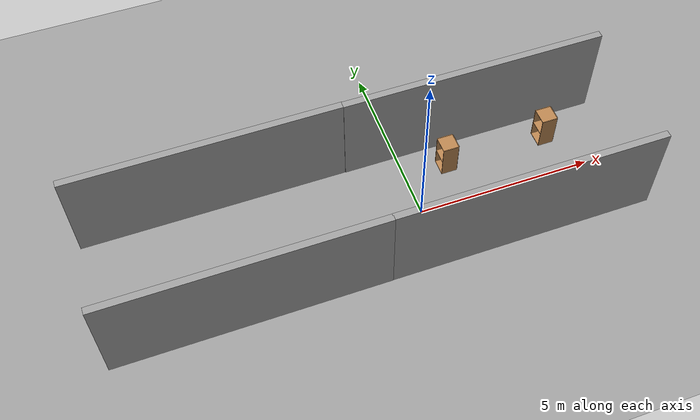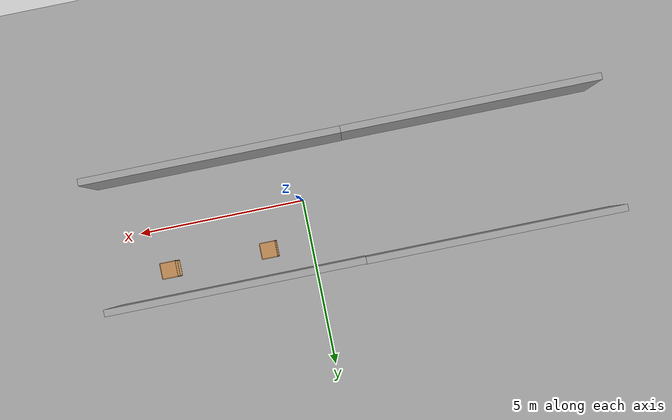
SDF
<sdf version="1.6">
 <world name="default">
  <light name="sun" type="directional">
   <pose>0 0 10 0 -0 0</pose>
   <diffuse>0.8 0.8 0.8 1</diffuse>
   <specular>0.2 0.2 0.2 1</specular>
   <attenuation>
    <range>1000</range>
    <constant>0.9</constant>
    <linear>0.01</linear>
    <quadratic>0.001</quadratic>
   </attenuation>
   <direction>0.5 0.1 -0.9</direction>
  </light>
  <scene><ambient>0.4 0.4 0.4 1</ambient><background>0.7 0.7 0.7 1</background><shadows>1</shadows></scene>
  <physics name="default_physics" default="0" type="ode">
   <max_step_size>0.01</max_step_size>
   <real_time_factor>1</real_time_factor>
   <real_time_update_rate>100</real_time_update_rate>
  </physics>
  <model name="ground_plane_0">
   <static>1</static>
   <link name="link">
    <collision name="collision">
     <geometry><plane><normal>0 0 1</normal><size>100 100</size></plane></geometry>
     <surface><friction><ode><mu>100</mu><mu2>50</mu2></ode></friction></surface>
    </collision>
    <visual name="visual">
     <cast_shadows>0</cast_shadows>
     <geometry><plane><normal>0 0 1</normal><size>100 100</size></plane></geometry>
     <material>
      <script><uri>file://media/materials/scripts/gazebo.material</uri><name>Gazebo/Grey</name></script>
     </material>
    </visual>
    <velocity_decay><linear>0</linear><angular>0</angular></velocity_decay>
   </link>
   <pose>0.497681 0 0 0 -0 0</pose>
  </model>
  <gravity>0 0 -9.8</gravity>
  <magnetic_field>6e-06 2.3e-05 -4.2e-05</magnetic_field>
  <atmosphere type="adiabatic"/>
  <spherical_coordinates>
   <surface_model>EARTH_WGS84</surface_model>
   <latitude_deg>0</latitude_deg>
   <longitude_deg>0</longitude_deg>
   <elevation>0</elevation>
   <heading_deg>0</heading_deg>
  </spherical_coordinates>
  <model name="cabinet_0">
   <static>1</static>
   <link name="cabinet_bottom_plate">
    <inertial>
     <pose>0 0 -1 0 -0 0</pose>
     <inertia><ixx>2.05</ixx><ixy>0</ixy><ixz>0</ixz><iyy>2.05</iyy><iyz>0</iyz><izz>2.05</izz></inertia>
     <mass>25</mass>
    </inertial>
    <collision name="cabinet_bottom_plate_geom">
     <pose>0 0 0.01 0 -0 0</pose>
     <geometry><box><size>0.45 0.45 0.02</size></box></geometry>
    </collision>
    <visual name="cabinet_bottom_plate_geom_visual">
     <pose>0 0 0.01 0 -0 0</pose>
     <geometry><box><size>0.45 0.45 0.02</size></box></geometry>
     <material>
      <script><uri>file://media/materials/scripts/gazebo.material</uri><name>Gazebo/Wood</name></script>
     </material>
    </visual>
    <collision name="cabinet_bottom_plate_geom_cabinet_back_plate">
     <pose>0.235 0 0.51 0 -0 0</pose>
     <geometry><box><size>0.02 0.45 1.02</size></box></geometry>
    </collision>
    <visual name="cabinet_bottom_plate_geom_cabinet_back_plate_visual">
     <pose>0.235 0 0.51 0 -0 0</pose>
     <geometry><box><size>0.02 0.45 1.02</size></box></geometry>
     <material>
      <script><uri>file://media/materials/scripts/gazebo.material</uri><name>Gazebo/Wood</name></script>
     </material>
    </visual>
    <collision name="cabinet_bottom_plate_geom_cabinet_left_plate">
     <pose>0 0.235 0.51 0 -0 0</pose>
     <geometry><box><size>0.45 0.02 1.02</size></box></geometry>
    </collision>
    <visual name="cabinet_bottom_plate_geom_cabinet_left_plate_visual">
     <pose>0 0.235 0.51 0 -0 0</pose>
     <geometry><box><size>0.45 0.02 1.02</size></box></geometry>
     <material>
      <script><uri>file://media/materials/scripts/gazebo.material</uri><name>Gazebo/Wood</name></script>
     </material>
    </visual>
    <collision name="cabinet_bottom_plate_geom_cabinet_middle_plate">
     <pose>0 0 0.51 0 -0 0</pose>
     <geometry><box><size>0.45 0.45 0.02</size></box></geometry>
    </collision>
    <visual name="cabinet_bottom_plate_geom_cabinet_middle_plate_visual">
     <pose>0 0 0.51 0 -0 0</pose>
     <geometry><box><size>0.45 0.45 0.02</size></box></geometry>
     <material>
      <script><uri>file://media/materials/scripts/gazebo.material</uri><name>Gazebo/Wood</name></script>
     </material>
    </visual>
    <collision name="cabinet_bottom_plate_geom_cabinet_right_plate">
     <pose>0 -0.235 0.51 0 -0 0</pose>
     <geometry><box><size>0.45 0.02 1.02</size></box></geometry>
    </collision>
    <visual name="cabinet_bottom_plate_geom_cabinet_right_plate_visual">
     <pose>0 -0.235 0.51 0 -0 0</pose>
     <geometry><box><size>0.45 0.02 1.02</size></box></geometry>
     <material>
      <script><uri>file://media/materials/scripts/gazebo.material</uri><name>Gazebo/Wood</name></script>
     </material>
    </visual>
    <collision name="cabinet_bottom_plate_geom_cabinet_top_plate">
     <pose>0 0 1.01 0 -0 0</pose>
     <geometry><box><size>0.45 0.45 0.02</size></box></geometry>
    </collision>
    <visual name="cabinet_bottom_plate_geom_cabinet_top_plate_visual">
     <pose>0 0 1.01 0 -0 0</pose>
     <geometry><box><size>0.45 0.45 0.02</size></box></geometry>
     <material>
      <script><uri>file://media/materials/scripts/gazebo.material</uri><name>Gazebo/Wood</name></script>
     </material>
    </visual>
   </link>
   <pose>4.23049 1.2407 0 0 -0 0</pose>
  </model>
  <model name="cabinet_1">
   <static>1</static>
   <link name="cabinet_bottom_plate">
    <inertial>
     <pose>0 0 -1 0 -0 0</pose>
     <inertia><ixx>2.05</ixx><ixy>0</ixy><ixz>0</ixz><iyy>2.05</iyy><iyz>0</iyz><izz>2.05</izz></inertia>
     <mass>25</mass>
    </inertial>
    <collision name="cabinet_bottom_plate_geom">
     <pose>0 0 0.01 0 -0 0</pose>
     <geometry><box><size>0.45 0.45 0.02</size></box></geometry>
    </collision>
    <visual name="cabinet_bottom_plate_geom_visual">
     <pose>0 0 0.01 0 -0 0</pose>
     <geometry><box><size>0.45 0.45 0.02</size></box></geometry>
     <material>
      <script><uri>file://media/materials/scripts/gazebo.material</uri><name>Gazebo/Wood</name></script>
     </material>
    </visual>
    <collision name="cabinet_bottom_plate_geom_cabinet_back_plate">
     <pose>0.235 0 0.51 0 -0 0</pose>
     <geometry><box><size>0.02 0.45 1.02</size></box></geometry>
    </collision>
    <visual name="cabinet_bottom_plate_geom_cabinet_back_plate_visual">
     <pose>0.235 0 0.51 0 -0 0</pose>
     <geometry><box><size>0.02 0.45 1.02</size></box></geometry>
     <material>
      <script><uri>file://media/materials/scripts/gazebo.material</uri><name>Gazebo/Wood</name></script>
     </material>
    </visual>
    <collision name="cabinet_bottom_plate_geom_cabinet_left_plate">
     <pose>0 0.235 0.51 0 -0 0</pose>
     <geometry><box><size>0.45 0.02 1.02</size></box></geometry>
    </collision>
    <visual name="cabinet_bottom_plate_geom_cabinet_left_plate_visual">
     <pose>0 0.235 0.51 0 -0 0</pose>
     <geometry><box><size>0.45 0.02 1.02</size></box></geometry>
     <material>
      <script><uri>file://media/materials/scripts/gazebo.material</uri><name>Gazebo/Wood</name></script>
     </material>
    </visual>
    <collision name="cabinet_bottom_plate_geom_cabinet_middle_plate">
     <pose>0 0 0.51 0 -0 0</pose>
     <geometry><box><size>0.45 0.45 0.02</size></box></geometry>
    </collision>
    <visual name="cabinet_bottom_plate_geom_cabinet_middle_plate_visual">
     <pose>0 0 0.51 0 -0 0</pose>
     <geometry><box><size>0.45 0.45 0.02</size></box></geometry>
     <material>
      <script><uri>file://media/materials/scripts/gazebo.material</uri><name>Gazebo/Wood</name></script>
     </material>
    </visual>
    <collision name="cabinet_bottom_plate_geom_cabinet_right_plate">
     <pose>0 -0.235 0.51 0 -0 0</pose>
     <geometry><box><size>0.45 0.02 1.02</size></box></geometry>
    </collision>
    <visual name="cabinet_bottom_plate_geom_cabinet_right_plate_visual">
     <pose>0 -0.235 0.51 0 -0 0</pose>
     <geometry><box><size>0.45 0.02 1.02</size></box></geometry>
     <material>
      <script><uri>file://media/materials/scripts/gazebo.material</uri><name>Gazebo/Wood</name></script>
     </material>
    </visual>
    <collision name="cabinet_bottom_plate_geom_cabinet_top_plate">
     <pose>0 0 1.01 0 -0 0</pose>
     <geometry><box><size>0.45 0.45 0.02</size></box></geometry>
    </collision>
    <visual name="cabinet_bottom_plate_geom_cabinet_top_plate_visual">
     <pose>0 0 1.01 0 -0 0</pose>
     <geometry><box><size>0.45 0.45 0.02</size></box></geometry>
     <material>
      <script><uri>file://media/materials/scripts/gazebo.material</uri><name>Gazebo/Wood</name></script>
     </material>
    </visual>
   </link>
   <pose>1.24304 1.24802 0 0 -0 0</pose>
  </model>
  <model name="grey_wall_5">
   <static>1</static>
   <link name="link">
    <pose>0 0 1.4 0 -0 0</pose>
    <collision name="collision"><geometry><box><size>7.5 0.2 2.8</size></box></geometry></collision>
    <visual name="visual">
     <cast_shadows>0</cast_shadows>
     <geometry><box><size>7.5 0.2 2.8</size></box></geometry>
     <material>
      <script>
       <uri>model://grey_wall/materials/scripts</uri>
       <uri>model://grey_wall/materials/textures</uri>
       <name>vrc/grey_wall</name>
      </script>
     </material>
    </visual>
   </link>
   <pose>2.24592 2.08303 0 0 -0 0</pose>
  </model>
  <model name="grey_wall_6">
   <static>1</static>
   <link name="link">
    <pose>0 0 1.4 0 -0 0</pose>
    <collision name="collision"><geometry><box><size>7.5 0.2 2.8</size></box></geometry></collision>
    <visual name="visual">
     <cast_shadows>0</cast_shadows>
     <geometry><box><size>7.5 0.2 2.8</size></box></geometry>
     <material>
      <script>
       <uri>model://grey_wall/materials/scripts</uri>
       <uri>model://grey_wall/materials/textures</uri>
       <name>vrc/grey_wall</name>
      </script>
     </material>
    </visual>
   </link>
   <pose>-5.23005 2.094 0 0 -0 0</pose>
  </model>
  <model name="grey_wall_7">
   <static>1</static>
   <link name="link">
    <pose>0 0 1.4 0 -0 0</pose>
    <collision name="collision"><geometry><box><size>7.5 0.2 2.8</size></box></geometry></collision>
    <visual name="visual">
     <cast_shadows>0</cast_shadows>
     <geometry><box><size>7.5 0.2 2.8</size></box></geometry>
     <material>
      <script>
       <uri>model://grey_wall/materials/scripts</uri>
       <uri>model://grey_wall/materials/textures</uri>
       <name>vrc/grey_wall</name>
      </script>
     </material>
    </visual>
   </link>
   <pose>2.23905 -1.65737 0 0 -0 0</pose>
  </model>
  <model name="grey_wall_8">
   <static>1</static>
   <link name="link">
    <pose>0 0 1.4 0 -0 0</pose>
    <collision name="collision"><geometry><box><size>7.5 0.2 2.8</size></box></geometry></collision>
    <visual name="visual">
     <cast_shadows>0</cast_shadows>
     <geometry><box><size>7.5 0.2 2.8</size></box></geometry>
     <material>
      <script>
       <uri>model://grey_wall/materials/scripts</uri>
       <uri>model://grey_wall/materials/textures</uri>
       <name>vrc/grey_wall</name>
      </script>
     </material>
    </visual>
   </link>
   <pose>-5.24204 -1.6618 0 0 -0 0</pose>
  </model>
 </world>
</sdf>
